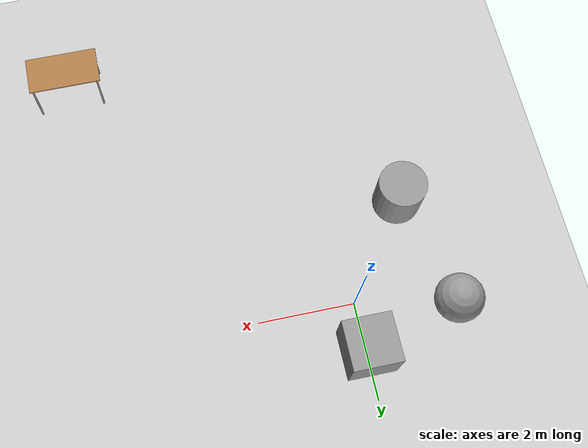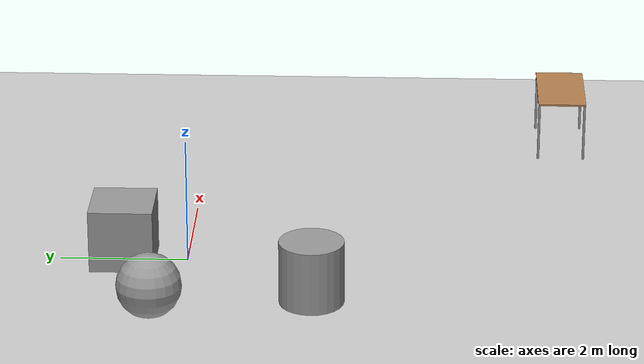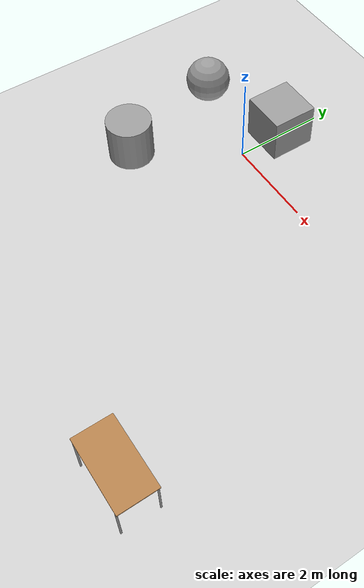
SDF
<sdf version="1.4">
 <world name="default">
  <light name="sun" type="directional">
   <pose>0 0 10 0 -0 0</pose>
   <diffuse>0.8 0.8 0.8 1</diffuse>
   <specular>0.2 0.2 0.2 1</specular>
   <attenuation>
    <range>1000</range>
    <constant>0.9</constant>
    <linear>0.01</linear>
    <quadratic>0.001</quadratic>
   </attenuation>
   <direction>-0.5 0.1 -0.9</direction>
  </light>
  <model name="ground_plane">
   <static>1</static>
   <link name="link">
    <collision name="collision">
     <geometry><plane><normal>0 0 1</normal><size>100 100</size></plane></geometry>
     <surface><friction><ode><mu>100</mu><mu2>50</mu2></ode></friction></surface>
    </collision>
    <visual name="visual">
     <cast_shadows>0</cast_shadows>
     <geometry><plane><normal>0 0 1</normal><size>100 100</size></plane></geometry>
     <material>
      <script><uri>file://media/materials/scripts/gazebo.material</uri><name>Gazebo/Grey</name></script>
     </material>
    </visual>
    <velocity_decay><linear>0</linear><angular>0</angular></velocity_decay>
   </link>
  </model>
  <physics type="ode">
   <max_step_size>0.001</max_step_size>
   <real_time_factor>1</real_time_factor>
   <real_time_update_rate>1000</real_time_update_rate>
   <gravity>0 0 -9.8</gravity>
  </physics>
  <scene><ambient>0.4 0.4 0.4 1</ambient><background>0.7 0.7 0.7 1</background><shadows>1</shadows></scene>
  <spherical_coordinates>
   <surface_model>EARTH_WGS84</surface_model>
   <latitude_deg>0</latitude_deg>
   <longitude_deg>0</longitude_deg>
   <elevation>0</elevation>
   <heading_deg>0</heading_deg>
  </spherical_coordinates>
  <model name="unit_sphere_1">
   <pose>-2 0.419622 0.5 0 -0 0</pose>
   <link name="link">
    <inertial>
     <mass>1</mass>
     <inertia><ixx>1</ixx><ixy>0</ixy><ixz>0</ixz><iyy>1</iyy><iyz>0</iyz><izz>1</izz></inertia>
    </inertial>
    <collision name="collision"><geometry><sphere><radius>0.5</radius></sphere></geometry></collision>
    <visual name="visual">
     <geometry><sphere><radius>0.5</radius></sphere></geometry>
     <material>
      <script><uri>file://media/materials/scripts/gazebo.material</uri><name>Gazebo/Grey</name></script>
     </material>
    </visual>
    <velocity_decay><linear>0</linear><angular>0</angular></velocity_decay>
   </link>
   <static>0</static>
  </model>
  <model name="unit_box_1">
   <pose>-0 1 0.5 0 -0 0</pose>
   <link name="link">
    <inertial>
     <mass>1</mass>
     <inertia><ixx>1</ixx><ixy>0</ixy><ixz>0</ixz><iyy>1</iyy><iyz>0</iyz><izz>1</izz></inertia>
    </inertial>
    <collision name="collision"><geometry><box><size>1 1 1</size></box></geometry></collision>
    <visual name="visual">
     <geometry><box><size>1 1 1</size></box></geometry>
     <material>
      <script><uri>file://media/materials/scripts/gazebo.material</uri><name>Gazebo/Grey</name></script>
     </material>
    </visual>
    <velocity_decay><linear>0</linear><angular>0</angular></velocity_decay>
   </link>
   <static>0</static>
  </model>
  <model name="unit_cylinder_1">
   <pose>-1.42136 -2 0.499998 1e-06 -0 0</pose>
   <link name="link">
    <inertial>
     <mass>1</mass>
     <inertia><ixx>1</ixx><ixy>0</ixy><ixz>0</ixz><iyy>1</iyy><iyz>0</iyz><izz>1</izz></inertia>
    </inertial>
    <collision name="collision">
     <geometry><cylinder><radius>0.5</radius><length>1</length></cylinder></geometry>
    </collision>
    <visual name="visual">
     <geometry><cylinder><radius>0.5</radius><length>1</length></cylinder></geometry>
     <material>
      <script><uri>file://media/materials/scripts/gazebo.material</uri><name>Gazebo/Grey</name></script>
     </material>
    </visual>
    <velocity_decay><linear>0</linear><angular>0</angular></velocity_decay>
   </link>
   <static>0</static>
  </model>
  <model name="table">
   <static>1</static>
   <link name="link">
    <collision name="surface">
     <pose>0 0 1 0 -0 0</pose>
     <geometry><box><size>1.5 0.8 0.03</size></box></geometry>
     <surface><friction><ode><mu>0.6</mu><mu2>0.6</mu2></ode></friction></surface>
    </collision>
    <visual name="visual1">
     <pose>0 0 1 0 -0 0</pose>
     <geometry><box><size>1.5 0.8 0.03</size></box></geometry>
     <material>
      <script><uri>file://media/materials/scripts/gazebo.material</uri><name>Gazebo/Wood</name></script>
     </material>
    </visual>
    <collision name="front_left_leg">
     <pose>0.68 0.38 0.5 0 -0 0</pose>
     <geometry><cylinder><radius>0.02</radius><length>1</length></cylinder></geometry>
    </collision>
    <visual name="front_left_leg">
     <pose>0.68 0.38 0.5 0 -0 0</pose>
     <geometry><cylinder><radius>0.02</radius><length>1</length></cylinder></geometry>
     <material>
      <script><uri>file://media/materials/scripts/gazebo.material</uri><name>Gazebo/Grey</name></script>
     </material>
    </visual>
    <collision name="front_right_leg">
     <pose>0.68 -0.38 0.5 0 -0 0</pose>
     <geometry><cylinder><radius>0.02</radius><length>1</length></cylinder></geometry>
    </collision>
    <visual name="front_right_leg">
     <pose>0.68 -0.38 0.5 0 -0 0</pose>
     <geometry><cylinder><radius>0.02</radius><length>1</length></cylinder></geometry>
     <material>
      <script><uri>file://media/materials/scripts/gazebo.material</uri><name>Gazebo/Grey</name></script>
     </material>
    </visual>
    <collision name="back_right_leg">
     <pose>-0.68 -0.38 0.5 0 -0 0</pose>
     <geometry><cylinder><radius>0.02</radius><length>1</length></cylinder></geometry>
    </collision>
    <visual name="back_right_leg">
     <pose>-0.68 -0.38 0.5 0 -0 0</pose>
     <geometry><cylinder><radius>0.02</radius><length>1</length></cylinder></geometry>
     <material>
      <script><uri>file://media/materials/scripts/gazebo.material</uri><name>Gazebo/Grey</name></script>
     </material>
    </visual>
    <collision name="back_left_leg">
     <pose>-0.68 0.38 0.5 0 -0 0</pose>
     <geometry><cylinder><radius>0.02</radius><length>1</length></cylinder></geometry>
    </collision>
    <visual name="back_left_leg">
     <pose>-0.68 0.38 0.5 0 -0 0</pose>
     <geometry><cylinder><radius>0.02</radius><length>1</length></cylinder></geometry>
     <material>
      <script><uri>file://media/materials/scripts/gazebo.material</uri><name>Gazebo/Grey</name></script>
     </material>
    </visual>
    <velocity_decay><linear>0</linear><angular>0</angular></velocity_decay>
   </link>
   <pose>5 -6 0 0 -0 0</pose>
  </model>
 </world>
</sdf>
